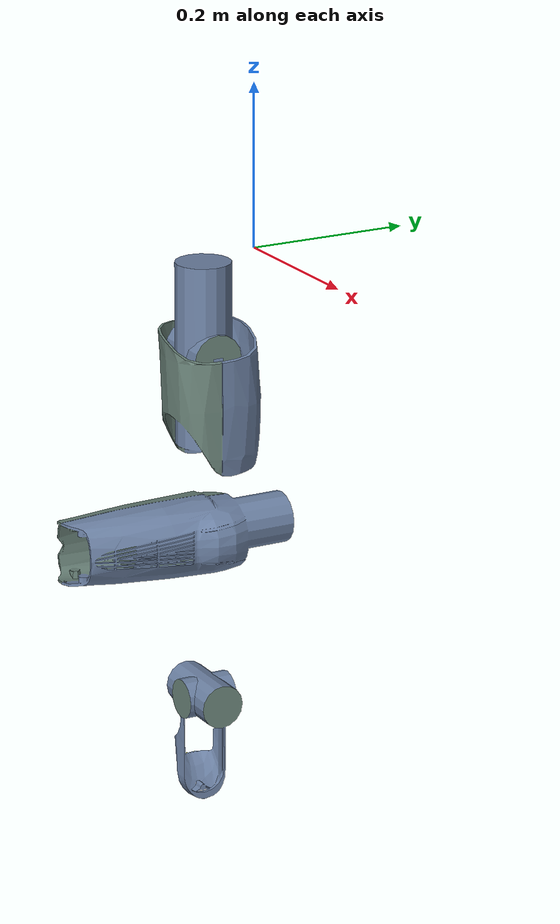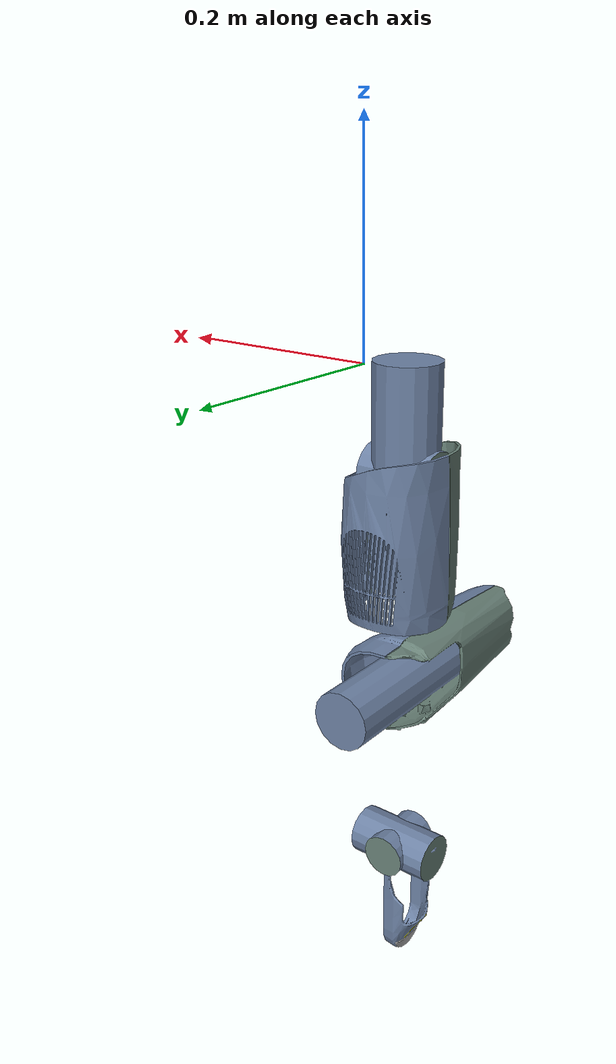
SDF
<?xml version='1.0'?>
<sdf version='1.6'>
    <model name='l_leg'>
        <link name='l_hip_1'>
            <pose>0 -0.0681 -0.1199 2.65359e-06 1.57079 3.14159</pose>
            <inertial>
                <pose>0 -0.0782 0 0 -0 0</pose>
                <mass>0.754</mass>
                <inertia>
                    <ixx>0.01</ixx>
                    <ixy>2.059e-06</ixy>
                    <ixz>1.451e-06</ixz>
                    <iyy>0.01</iyy>
                    <iyz>1.545e-06</iyz>
                    <izz>0.01</izz>
                </inertia>
            </inertial>
            <collision name='l_hip_1_collision'>
                <pose>0 0 0 -0.785403 1.57079 -2.35619</pose>
                <geometry>
                    <mesh>
                        <scale>1 1 1</scale>
                        <uri>model://icub/meshes/collision/icub_simple_collision_l_hip_1.dae</uri>
                    </mesh>
                </geometry>
            </collision>
            <visual name='l_hip_1_visual'>
                <pose>0 0 0 -0.785403 1.57079 -2.35619</pose>
                <geometry>
                    <mesh>
                        <scale>1 1 1</scale>
                        <uri>model://icub/meshes/visual/icub_l_hip_1.dae</uri>
                    </mesh>
                </geometry>
            </visual>
        </link>
        <joint name='l_hip_pitch' type='revolute'>
            <child>l_hip_1</child>
            <parent>root_link</parent>
            <axis>
                <xyz>2.65359e-06 1 -9.74718e-12</xyz>
                <limit>
                    <lower>-0.767945</lower>
                    <upper>2.30383</upper>
                    <effort>320</effort>
                    <velocity>100</velocity>
                </limit>
                <dynamics>
                    <damping>1</damping>
                    <friction>0</friction>
                    <spring_reference>0</spring_reference>
                    <spring_stiffness>0</spring_stiffness>
                </dynamics>
                <use_parent_model_frame>1</use_parent_model_frame>
            </axis>
        </joint>
        <link name='l_hip_2'>
            <pose>0 -0.0681 -0.1199 3.14159 -7.34641e-06 3.14159</pose>
            <inertial>
                <pose>0 0 0.03045 0 -0 0</pose>
                <mass>0.526</mass>
                <inertia>
                    <ixx>0.01</ixx>
                    <ixy>-7.4e-08</ixy>
                    <ixz>1.0835e-05</ixz>
                    <iyy>0.01</iyy>
                    <iyz>-6.2e-08</iyz>
                    <izz>0.01</izz>
                </inertia>
            </inertial>
            <collision name='l_hip_2_collision'>
                <pose>0 0 0 0.785363 -1.57079 2.35623</pose>
                <geometry>
                    <mesh>
                        <scale>1 1 1</scale>
                        <uri>model://icub/meshes/collision/icub_simple_collision_l_hip_2.dae</uri>
                    </mesh>
                </geometry>
            </collision>
            <visual name='l_hip_2_visual'>
                <pose>0 0 0 0.785363 -1.57079 2.35623</pose>
                <geometry>
                    <mesh>
                        <scale>1 1 1</scale>
                        <uri>model://icub/meshes/visual/icub_l_hip_2.dae</uri>
                    </mesh>
                </geometry>
            </visual>
        </link>
        <joint name='l_hip_roll' type='revolute'>
            <child>l_hip_2</child>
            <parent>l_hip_1</parent>
            <axis>
                <xyz>-1 2.65359e-06 7.34641e-06</xyz>
                <limit>
                    <lower>-0.296706</lower>
                    <upper>2.07694</upper>
                    <effort>40</effort>
                    <velocity>100</velocity>
                </limit>
                <dynamics>
                    <damping>1</damping>
                    <friction>0</friction>
                    <spring_reference>0</spring_reference>
                    <spring_stiffness>0</spring_stiffness>
                </dynamics>
                <use_parent_model_frame>1</use_parent_model_frame>
            </axis>
        </joint>
        <link name='l_hip_3'>
            <pose>-4.88536e-07 -0.0680998 -0.1864 3.14159 -7.34641e-06 3.14159</pose>
            <inertial>
                <pose>0 0 0 0 -0 0</pose>
                <mass>0.1</mass>
                <inertia>
                    <ixx>0.01</ixx>
                    <ixy>0</ixy>
                    <ixz>0</ixz>
                    <iyy>0.01</iyy>
                    <iyz>0</iyz>
                    <izz>0.01</izz>
                </inertia>
            </inertial>
        </link>
        <joint name='l_leg_ft_sensor' type='fixed'>
            <child>l_hip_3</child>
            <parent>l_hip_2</parent>
        </joint>
        <link name='l_upper_leg'>
            <pose>0 -0.0681 -0.1199 1.57079 -7.34641e-06 3.14159</pose>
            <inertial>
                <pose>0.00144 -0.15943 -0.00039 0 -0 0</pose>
                <mass>2.175</mass>
                <inertia>
                    <ixx>0.01</ixx>
                    <ixy>-6.726e-05</ixy>
                    <ixz>2.267e-06</ixz>
                    <iyy>0.01</iyy>
                    <iyz>3.63726e-05</iyz>
                    <izz>0.01</izz>
                </inertia>
            </inertial>
            <collision name='l_upper_leg_collision'>
                <pose>0 0 0 -2.67797 1.57079 -1.10716</pose>
                <geometry>
                    <mesh>
                        <scale>1 1 1</scale>
                        <uri>model://icub/meshes/collision/icub_simple_collision_l_thigh.dae</uri>
                    </mesh>
                </geometry>
            </collision>
            <visual name='l_upper_leg_visual'>
                <pose>0 0 0 -2.67797 1.57079 -1.10716</pose>
                <geometry>
                    <mesh>
                        <scale>1 1 1</scale>
                        <uri>model://icub/meshes/visual/icub_l_thigh.dae</uri>
                    </mesh>
                </geometry>
            </visual>
        </link>
        <joint name='l_hip_yaw' type='revolute'>
            <child>l_upper_leg</child>
            <parent>l_hip_3</parent>
            <axis>
                <xyz>7.34639e-06 -6.3268e-06 1</xyz>
                <limit>
                    <lower>-1.37881</lower>
                    <upper>1.37881</upper>
                    <effort>40</effort>
                    <velocity>100</velocity>
                </limit>
                <dynamics>
                    <damping>1</damping>
                    <friction>0</friction>
                    <spring_reference>0</spring_reference>
                    <spring_stiffness>0</spring_stiffness>
                </dynamics>
                <use_parent_model_frame>1</use_parent_model_frame>
            </axis>
        </joint>
        <link name='l_lower_leg'>
            <pose>-1.64265e-06 -0.0680986 -0.3435 2.09198 -1.57078 -0.521189</pose>
            <inertial>
                <pose>-0.1071 0.00182 0.00211 0 -0 0</pose>
                <mass>1.264</mass>
                <inertia>
                    <ixx>0.01</ixx>
                    <ixy>-0.000185699</ixy>
                    <ixz>-6.3147e-05</ixz>
                    <iyy>0.01</iyy>
                    <iyz>7.86e-07</iyz>
                    <izz>0.01</izz>
                </inertia>
            </inertial>
            <collision name='l_lower_leg_collision'>
                <pose>5.55112e-17 2.28232e-12 2.2823e-12 -3.14159 -2.33487e-16 1.5708</pose>
                <geometry>
                    <mesh>
                        <scale>1 1 1</scale>
                        <uri>model://icub/meshes/collision/icub_simple_collision_l_shank.dae</uri>
                    </mesh>
                </geometry>
            </collision>
            <visual name='l_lower_leg_visual'>
                <pose>5.55112e-17 2.28232e-12 2.2823e-12 -3.14159 -2.33487e-16 1.5708</pose>
                <geometry>
                    <mesh>
                        <scale>1 1 1</scale>
                        <uri>model://icub/meshes/visual/icub_l_shank.dae</uri>
                    </mesh>
                </geometry>
            </visual>
        </link>
        <joint name='l_knee' type='revolute'>
            <child>l_lower_leg</child>
            <parent>l_upper_leg</parent>
            <axis>
                <xyz>5.30723e-06 1 6.32676e-06</xyz>
                <limit>
                    <lower>-2.18166</lower>
                    <upper>0.401426</upper>
                    <effort>40</effort>
                    <velocity>100</velocity>
                </limit>
                <dynamics>
                    <damping>1</damping>
                    <friction>0</friction>
                    <spring_reference>0</spring_reference>
                    <spring_stiffness>0</spring_stiffness>
                </dynamics>
                <use_parent_model_frame>1</use_parent_model_frame>
            </axis>
        </joint>
        <link name='l_ankle_1'>
            <pose>-3.98983e-06 -0.0680972 -0.5565 0.52118 -1.57078 -0.521189</pose>
            <inertial>
                <pose>-0.0054 0.00163 0.0172 0 -0 0</pose>
                <mass>0.746</mass>
                <inertia>
                    <ixx>0.01</ixx>
                    <ixy>-7.081e-06</ixy>
                    <ixz>4.1421e-05</ixz>
                    <iyy>0.01</iyy>
                    <iyz>2.0817e-05</iyz>
                    <izz>0.01</izz>
                </inertia>
            </inertial>
            <collision name='l_ankle_1_collision'>
                <pose>1.11022e-16 -5.54343e-12 4.45647e-12 1.5708 1.53106e-11 1.53105e-11</pose>
                <geometry>
                    <mesh>
                        <scale>1 1 1</scale>
                        <uri>model://icub/meshes/collision/icub_simple_collision_l_ankle_1.dae</uri>
                    </mesh>
                </geometry>
            </collision>
            <visual name='l_ankle_1_visual'>
                <pose>1.11022e-16 -5.54343e-12 4.45647e-12 1.5708 1.53106e-11 1.53105e-11</pose>
                <geometry>
                    <mesh>
                        <scale>1 1 1</scale>
                        <uri>model://icub/meshes/visual/icub_l_ankle_1.dae</uri>
                    </mesh>
                </geometry>
            </visual>
        </link>
        <joint name='l_ankle_pitch' type='revolute'>
            <child>l_ankle_1</child>
            <parent>l_lower_leg</parent>
            <axis>
                <xyz>-8.98043e-06 -1 -6.32672e-06</xyz>
                <limit>
                    <lower>-0.733038</lower>
                    <upper>0.366519</upper>
                    <effort>40</effort>
                    <velocity>100</velocity>
                </limit>
                <dynamics>
                    <damping>1</damping>
                    <friction>0</friction>
                    <spring_reference>0</spring_reference>
                    <spring_stiffness>0</spring_stiffness>
                </dynamics>
                <use_parent_model_frame>1</use_parent_model_frame>
            </axis>
        </joint>
        <link name='l_ankle_2'>
            <pose>-3.98983e-06 -0.0680972 -0.5565 3.14159 -7.34645e-06 3.14158</pose>
            <inertial>
                <pose>0 0 0.037 0 -0 0</pose>
                <mass>0.2675</mass>
                <inertia>
                    <ixx>0.01</ixx>
                    <ixy>0</ixy>
                    <ixz>0</ixz>
                    <iyy>0.01</iyy>
                    <iyz>0</iyz>
                    <izz>0.01</izz>
                </inertia>
            </inertial>
        </link>
        <joint name='l_ankle_roll' type='revolute'>
            <child>l_ankle_2</child>
            <parent>l_ankle_1</parent>
            <axis>
                <xyz>-1 8.98038e-06 7.34645e-06</xyz>
                <limit>
                    <lower>-0.418879</lower>
                    <upper>0.418879</upper>
                    <effort>40</effort>
                    <velocity>100</velocity>
                </limit>
                <dynamics>
                    <damping>1</damping>
                    <friction>0</friction>
                    <spring_reference>0</spring_reference>
                    <spring_stiffness>0</spring_stiffness>
                </dynamics>
                <use_parent_model_frame>1</use_parent_model_frame>
            </axis>
        </joint>
        <link name='l_foot'>
            <pose>-4.26164e-06 -0.068097 -0.5935 3.14159 -7.34645e-06 3.14158</pose>
            <inertial>
                <pose>0.024069 -0.000613931 -0.0284154 0 -0 0</pose>
                <mass>0.5935</mass>
                <inertia>
                    <ixx>0.01</ixx>
                    <ixy>-4.51893e-06</ixy>
                    <ixz>0.000567785</ixz>
                    <iyy>0.01</iyy>
                    <iyz>-6.62361e-07</iyz>
                    <izz>0.01</izz>
                </inertia>
            </inertial>
            <collision name='l_foot_collision'>
                <pose>0.03 0 -0.01 0 -0 0</pose>
                <geometry>
                    <box>
                        <size>0.15 0.07 0.03</size>
                    </box>
                </geometry>
                <max_contacts>4</max_contacts>
                <surface>
                    <contact>
                        <ode>
                            <soft_erp>0.2</soft_erp>
                            <soft_cfm>0</soft_cfm>
                            <kp>18000000</kp>
                            <kd>100</kd>
                            <max_vel>1</max_vel>
                            <min_depth>0.0001</min_depth>
                        </ode>
                    </contact>
                    <friction>
                        <ode>
                            <mu>1</mu>
                            <mu2>1</mu2>
                            <fdir1>0 0 0</fdir1>
                            <slip1>0</slip1>
                            <slip2>0</slip2>
                        </ode>
                    </friction>
                    <bounce>
                        <restitution_coefficient>0</restitution_coefficient>
                        <threshold>100000</threshold>
                    </bounce>
                </surface>
            </collision>
            <visual name='l_foot_visual'>
                <pose>4.45647e-12 -5.54343e-12 -0.037 -0.785403 1.57079 -0.785403</pose>
                <geometry>
                    <mesh>
                        <scale>1 1 1</scale>
                        <uri>model://icub/meshes/visual/icub_l_foot.dae</uri>
                    </mesh>
                </geometry>
            </visual>
            <sensor name="l_foot_contact_sensor" type="contact">
                <always_on>1</always_on>
                <update_rate>100.000000</update_rate>
                <contact>
                    <collision>l_foot_collision</collision>
                    <topic>__default_topic__</topic>
                </contact>
            </sensor>
        </link>
        <joint name='l_foot_ft_sensor' type='fixed'>
            <child>l_foot</child>
            <parent>l_ankle_2</parent>
        </joint>
    </model>
</sdf>
